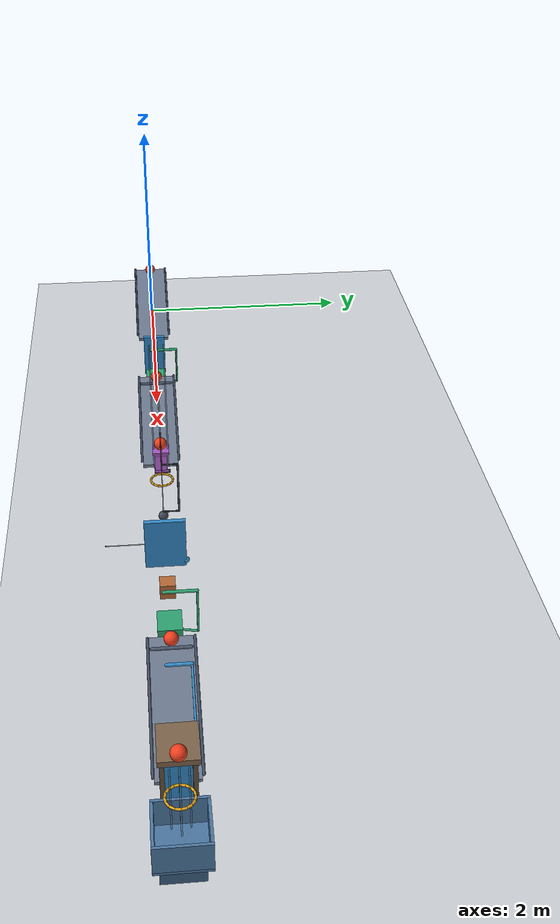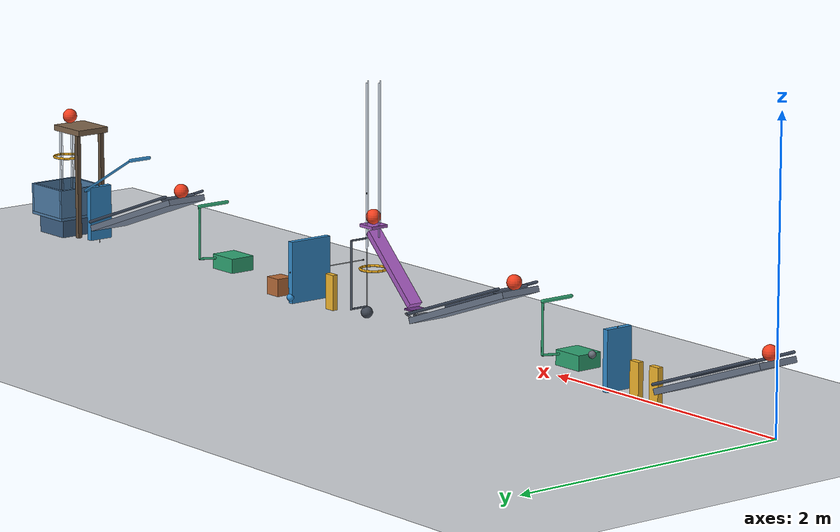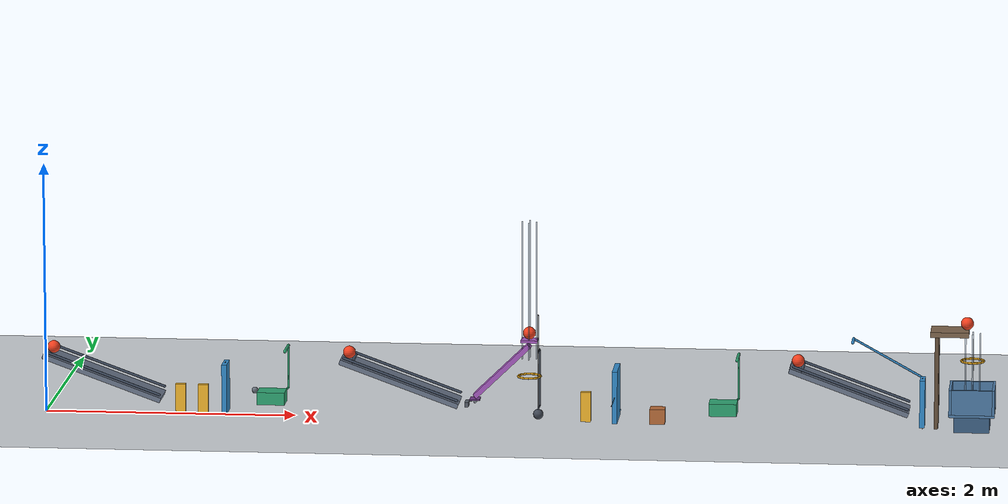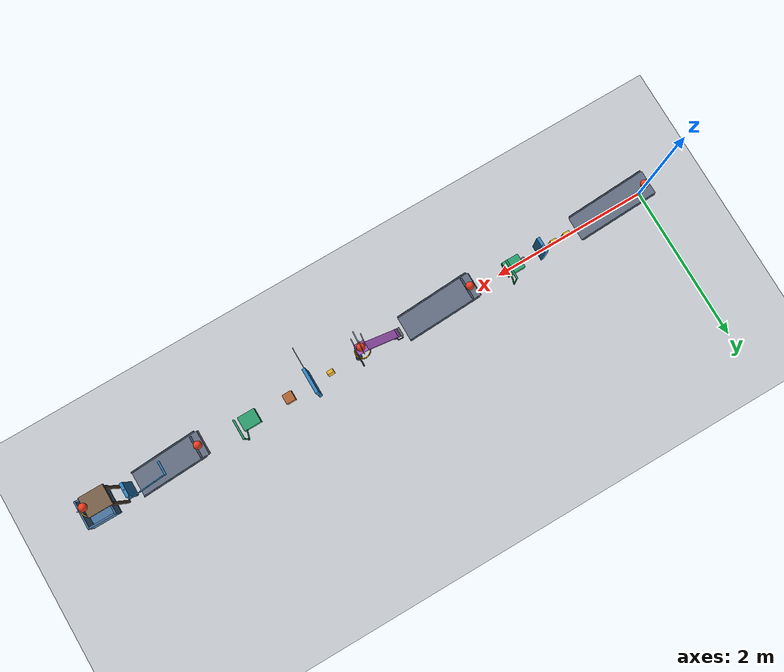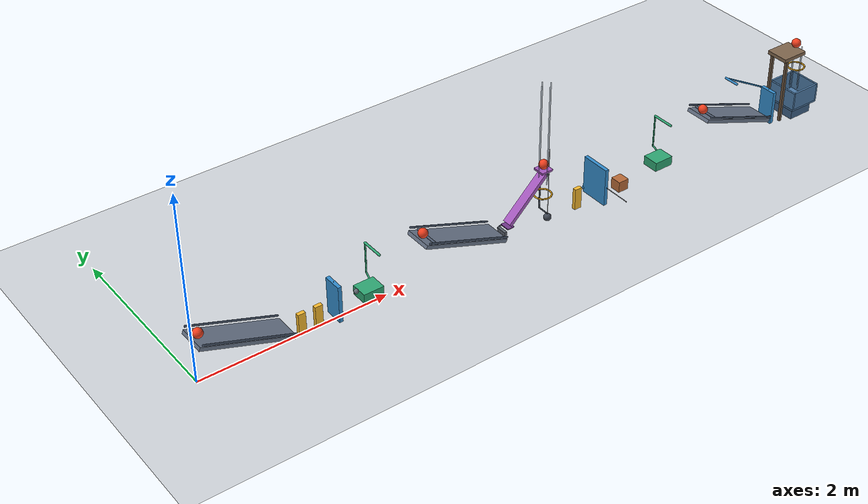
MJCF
<mujoco model="passive_chain_reaction_revised">
  <compiler angle="radian" autolimits="true"/>
  <option timestep="0.002" gravity="0 0 -9.81" integrator="implicitfast" solver="Newton" iterations="100" tolerance="1e-9" cone="elliptic"/>
  <size njmax="3000" nconmax="1000"/>

  <!-- Contact damping approximates restitution 0.05; sliding friction is 0.70. -->
  <default>
    <geom friction="0.70 0 0" condim="3" solref="0.010 0.690107" solimp="0.95 0.99 0.001 0.5 2"/>
    <joint armature="0" solreflimit="0.006 1" solimplimit="0.99 0.999 0.001 0.5 2"/>
  </default>

  <visual>
    <global azimuth="110" elevation="-20"/>
    <headlight ambient="0.35 0.35 0.35" diffuse="0.65 0.65 0.65" specular="0.15 0.15 0.15"/>
    <rgba haze="0.85 0.90 0.95 1"/>
  </visual>

  <worldbody>
    <light name="main_light" pos="3.5 -3 7" dir="0 0 -1" directional="true"/>
    <camera name="overview" pos="4 -8 5" xyaxes="1 0 0 0 0.447214 0.894427"/>
    <geom name="floor" type="plane" size="12 6 0.1" friction="0.70 0.005 0.002" condim="6" priority="1" rgba="0.82 0.84 0.86 1"/>

    <body name="ramp1" pos="0.463006 0 0.302216" euler="0 0.3490658504 0">
      <geom name="ramp1_surface" type="box" size="0.50 0.15 0.02" rgba="0.42 0.47 0.55 1"/>
      <geom name="ramp1_left_rail" type="capsule" fromto="-0.48 -0.158 0.045 0.48 -0.158 0.045" size="0.01" rgba="0.25 0.30 0.38 1"/>
      <geom name="ramp1_right_rail" type="capsule" fromto="-0.48 0.158 0.045 0.48 0.158 0.045" size="0.01" rgba="0.25 0.30 0.38 1"/>
    </body>

    <body name="ball1" pos="0.064086 0 0.521904">
      <freejoint name="ball1_free"/>
      <geom name="ball1_sphere" type="sphere" size="0.05" mass="0.20" rgba="0.95 0.25 0.12 1"/>
    </body>

    <body name="domino1" pos="1.0796926 0 0.12">
      <freejoint name="domino1_free"/>
      <geom name="domino1_box" type="box" size="0.04 0.02 0.12" mass="0.25" rgba="0.96 0.72 0.18 1"/>
    </body>

    <body name="domino2" pos="1.2596926 0 0.12">
      <freejoint name="domino2_free"/>
      <geom name="domino2_box" type="box" size="0.04 0.02 0.12" mass="0.25" rgba="0.96 0.72 0.18 1"/>
    </body>

    <body name="flap1" pos="1.4396926 0 0.02">
      <joint name="flap1_hinge" type="hinge" axis="0 1 0" damping="0.04" limited="true" range="0 1.1344640138"/>
      <geom name="flap1_panel" type="box" pos="0 0 0.20" size="0.02 0.10 0.20" mass="0.30" rgba="0.20 0.55 0.80 1"/>
      <site name="flap1_spring_tip" pos="0 0 0.40" size="0.005" rgba="0.25 0.25 0.25 1"/>
    </body>

    <body name="flap1_spring_mount" pos="1.4396926 0 -0.30">
      <site name="flap1_spring_anchor" pos="0 0 0" size="0.005" rgba="0.25 0.25 0.25 1"/>
    </body>

    <!-- The freely rotating rear roller prevents the inclined flap/cart contact from self-locking. -->
    <!-- Cart box plus roller mass is 0.50 kg. -->
    <body name="cart1" pos="1.81 0 0.15">
      <joint name="cart1_slide" type="slide" axis="1 0 0" damping="0.20" limited="true" range="0 0.45"/>
      <geom name="cart1_box" type="box" size="0.11 0.09 0.05" mass="0.49" rgba="0.18 0.65 0.45 1"/>
      <geom name="cart1_pushrod" type="capsule" fromto="0.11 0.20 0.03 0.11 0.20 0.374245" size="0.008" mass="0" rgba="0.18 0.65 0.45 1"/>
      <geom name="cart1_striker" type="capsule" fromto="0.11 -0.035 0.374245 0.11 0.20 0.374245" size="0.012" mass="0" rgba="0.18 0.65 0.45 1"/>
      <geom name="cart1_pushrod_brace" type="capsule" fromto="0.075 0.075 0.025 0.11 0.20 0.03" size="0.008" mass="0" rgba="0.18 0.65 0.45 1"/>
      <body name="cart1_contact_roller" pos="-0.135 0 0.05">
        <joint name="cart1_contact_roller_joint" type="ball" damping="0"/>
        <geom name="cart1_contact_roller_sphere" type="sphere" size="0.025" mass="0.01" rgba="0.40 0.43 0.47 1"/>
      </body>
    </body>

    <body name="ramp2" pos="2.837356 0 0.302216" euler="0 0.3490658504 0">
      <geom name="ramp2_surface" type="box" size="0.50 0.15 0.02" rgba="0.42 0.47 0.55 1"/>
      <geom name="ramp2_left_rail" type="capsule" fromto="-0.48 -0.158 0.045 0.48 -0.158 0.045" size="0.01" rgba="0.25 0.30 0.38 1"/>
      <geom name="ramp2_right_rail" type="capsule" fromto="-0.48 0.158 0.045 0.48 0.158 0.045" size="0.01" rgba="0.25 0.30 0.38 1"/>
      <geom name="ramp2_release_lip" type="capsule" fromto="-0.405 -0.13 0.036 -0.405 0.13 0.036" size="0.012" rgba="0.30 0.35 0.43 1"/>
    </body>

    <body name="ball2" pos="2.432 0 0.524245">
      <freejoint name="ball2_free"/>
      <geom name="ball2_sphere" type="sphere" size="0.05" mass="0.20" rgba="0.95 0.25 0.12 1"/>
    </body>

    <body name="lever1" pos="3.649844 0 0.398398" euler="0 -0.7679448709 0">
      <joint name="lever1_hinge" type="hinge" axis="0 -1 0" damping="0.04" stiffness="2.0" springref="1.20" limited="true" range="0 0.7853981634"/>
      <geom name="lever1_beam" type="box" size="0.30 0.05 0.02" mass="0.50" rgba="0.65 0.35 0.75 1"/>
      <geom name="lever1_ball_tray" type="box" pos="0.327786 0 0.028774" euler="0 0.7679448709 0" size="0.065 0.065 0.01" mass="0" rgba="0.65 0.35 0.75 1"/>
      <geom name="lever1_latch_pad" type="box" pos="-0.317366 0 -0.017984" euler="0 0.7679448709 0" size="0.04 0.055 0.005" mass="0" rgba="0.45 0.22 0.55 1"/>
    </body>

    <!-- Breakaway friction holds the latch until impact; its trigger and links remain below the lever pad. -->
    <body name="lever_latch" pos="3.434042 0 0.145">
      <joint name="lever_latch_slide" type="slide" axis="1 0 0" damping="0.20" frictionloss="0.30" limited="true" range="0 0.18"/>
      <geom name="lever_latch_trigger" type="box" pos="-0.065 0 -0.02" size="0.015 0.055 0.02" mass="0.025" rgba="0.35 0.38 0.42 1"/>
      <geom name="lever_latch_link" type="capsule" fromto="0 0.075 0 -0.065 0.075 -0.02" size="0.006" mass="0" rgba="0.35 0.38 0.42 1"/>
      <geom name="lever_latch_lower_crosspiece" type="capsule" fromto="0 0 0 0 0.075 0" size="0.006" mass="0" rgba="0.35 0.38 0.42 1"/>
      <geom name="lever_latch_upper_crosspiece" type="capsule" fromto="-0.065 0 -0.02 -0.065 0.075 -0.02" size="0.006" mass="0" rgba="0.35 0.38 0.42 1"/>
      <body name="lever_latch_roller" pos="0 0 0">
        <joint name="lever_latch_roller_joint" type="ball" damping="0"/>
        <geom name="lever_latch_roller_sphere" type="sphere" size="0.015" mass="0.005" rgba="0.60 0.63 0.68 1"/>
      </body>
    </body>

    <body name="ball3" pos="3.865646 0 0.706796">
      <freejoint name="ball3_free"/>
      <geom name="ball3_sphere" type="sphere" size="0.05" mass="0.20" contype="2" conaffinity="3" rgba="0.95 0.25 0.12 1"/>
    </body>

    <body name="launch_guide" pos="3.865646 0 0">
      <geom name="launch_guide_left" type="capsule" fromto="-0.057 0 0.50 -0.057 0 1.60" size="0.005" contype="2" conaffinity="2" rgba="0.55 0.65 0.75 0.35"/>
      <geom name="launch_guide_right" type="capsule" fromto="0.057 0 0.50 0.057 0 1.60" size="0.005" contype="2" conaffinity="2" rgba="0.55 0.65 0.75 0.35"/>
      <geom name="launch_guide_front" type="capsule" fromto="0 -0.057 0.50 0 -0.057 1.60" size="0.005" contype="2" conaffinity="2" rgba="0.55 0.65 0.75 0.35"/>
      <geom name="launch_guide_back" type="capsule" fromto="0 0.057 0.50 0 0.057 1.60" size="0.005" contype="2" conaffinity="2" rgba="0.55 0.65 0.75 0.35"/>
    </body>

    <body name="ring1" pos="3.865646 0 0.356796">
      <geom name="ring1_segment01" type="capsule" fromto="0.089724 0 0 0.082894 0.034336 0" size="0.008" rgba="0.90 0.65 0.10 1"/>
      <geom name="ring1_segment02" type="capsule" fromto="0.082894 0.034336 0 0.063444 0.063444 0" size="0.008" rgba="0.90 0.65 0.10 1"/>
      <geom name="ring1_segment03" type="capsule" fromto="0.063444 0.063444 0 0.034336 0.082894 0" size="0.008" rgba="0.90 0.65 0.10 1"/>
      <geom name="ring1_segment04" type="capsule" fromto="0.034336 0.082894 0 0 0.089724 0" size="0.008" rgba="0.90 0.65 0.10 1"/>
      <geom name="ring1_segment05" type="capsule" fromto="0 0.089724 0 -0.034336 0.082894 0" size="0.008" rgba="0.90 0.65 0.10 1"/>
      <geom name="ring1_segment06" type="capsule" fromto="-0.034336 0.082894 0 -0.063444 0.063444 0" size="0.008" rgba="0.90 0.65 0.10 1"/>
      <geom name="ring1_segment07" type="capsule" fromto="-0.063444 0.063444 0 -0.082894 0.034336 0" size="0.008" rgba="0.90 0.65 0.10 1"/>
      <geom name="ring1_segment08" type="capsule" fromto="-0.082894 0.034336 0 -0.089724 0 0" size="0.008" rgba="0.90 0.65 0.10 1"/>
      <geom name="ring1_segment09" type="capsule" fromto="-0.089724 0 0 -0.082894 -0.034336 0" size="0.008" rgba="0.90 0.65 0.10 1"/>
      <geom name="ring1_segment10" type="capsule" fromto="-0.082894 -0.034336 0 -0.063444 -0.063444 0" size="0.008" rgba="0.90 0.65 0.10 1"/>
      <geom name="ring1_segment11" type="capsule" fromto="-0.063444 -0.063444 0 -0.034336 -0.082894 0" size="0.008" rgba="0.90 0.65 0.10 1"/>
      <geom name="ring1_segment12" type="capsule" fromto="-0.034336 -0.082894 0 0 -0.089724 0" size="0.008" rgba="0.90 0.65 0.10 1"/>
      <geom name="ring1_segment13" type="capsule" fromto="0 -0.089724 0 0.034336 -0.082894 0" size="0.008" rgba="0.90 0.65 0.10 1"/>
      <geom name="ring1_segment14" type="capsule" fromto="0.034336 -0.082894 0 0.063444 -0.063444 0" size="0.008" rgba="0.90 0.65 0.10 1"/>
      <geom name="ring1_segment15" type="capsule" fromto="0.063444 -0.063444 0 0.082894 -0.034336 0" size="0.008" rgba="0.90 0.65 0.10 1"/>
      <geom name="ring1_segment16" type="capsule" fromto="0.082894 -0.034336 0 0.089724 0 0" size="0.008" rgba="0.90 0.65 0.10 1"/>
    </body>

    <body name="pendulum1" pos="3.935646 0 0.550227">
      <joint name="pendulum1_hinge" type="hinge" axis="0 -1 0" damping="0.04" limited="true" range="0 0.6981317008"/>
      <geom name="pendulum1_rod" type="capsule" fromto="0 0.13 -0.01 0 0.13 -0.46" size="0.008" mass="0.05" rgba="0.32 0.36 0.42 1"/>
      <geom name="pendulum1_upper_yoke" type="capsule" fromto="0 0 0 0 0.13 0" size="0.006" mass="0" rgba="0.32 0.36 0.42 1"/>
      <geom name="pendulum1_lower_yoke" type="capsule" fromto="0 0.13 -0.46 0 0 -0.46" size="0.006" mass="0" rgba="0.32 0.36 0.42 1"/>
      <geom name="pendulum1_bob" type="sphere" pos="0 0 -0.50" size="0.04" mass="0.30" rgba="0.25 0.28 0.33 1"/>
      <site name="pendulum1_spring_bob" pos="0 0 -0.50" size="0.005" rgba="0.25 0.25 0.25 1"/>
    </body>

    <body name="pendulum_spring_mount" pos="3.935646 0 0.850227">
      <site name="pendulum_spring_anchor" pos="0 0 0" size="0.005" rgba="0.25 0.25 0.25 1"/>
    </body>

    <body name="domino3" pos="4.314244 0 0.12">
      <freejoint name="domino3_free"/>
      <geom name="domino3_box" type="box" size="0.04 0.02 0.12" mass="0.25" rgba="0.96 0.72 0.18 1"/>
    </body>

    <!-- The door now swings clockwise about a vertical side hinge, avoiding a downward wedging force on block1. -->
    <body name="door1" pos="4.554244 -0.16 0.02">
      <joint name="door1_hinge" type="hinge" axis="0 0 -1" damping="0.04" limited="true" range="0 1.2217304764"/>
      <geom name="door1_panel" type="box" pos="0 0.16 0.21" size="0.02 0.16 0.21" mass="0.45" rgba="0.20 0.55 0.80 1"/>
      <geom name="door1_block_striker" type="sphere" pos="0 0.32 0.04" size="0.025" mass="0" rgba="0.20 0.55 0.80 1"/>
      <site name="door1_spring_tip" pos="0 0.32 0.21" size="0.005" rgba="0.25 0.25 0.25 1"/>
    </body>

    <body name="door_spring_mount" pos="4.554244 -0.46 0.23">
      <site name="door_spring_anchor" pos="0 0 0" size="0.005" rgba="0.25 0.25 0.25 1"/>
    </body>

    <body name="block1" pos="4.884244 0 0.06">
      <freejoint name="block1_free"/>
      <geom name="block1_cube" type="box" size="0.06 0.06 0.06" mass="0.35" rgba="0.72 0.42 0.22 1"/>
    </body>

    <body name="cart2" pos="5.404244 0 0.13">
      <joint name="cart2_slide" type="slide" axis="1 0 0" damping="0.20" limited="true" range="0 0.42"/>
      <geom name="cart2_box" type="box" size="0.11 0.09 0.05" mass="0.50" rgba="0.18 0.65 0.45 1"/>
      <geom name="cart2_pushrod" type="capsule" fromto="0.11 0.20 0.03 0.11 0.20 0.394245" size="0.008" mass="0" rgba="0.18 0.65 0.45 1"/>
      <geom name="cart2_striker" type="capsule" fromto="0.11 -0.035 0.394245 0.11 0.20 0.394245" size="0.012" mass="0" rgba="0.18 0.65 0.45 1"/>
      <geom name="cart2_pushrod_brace" type="capsule" fromto="0.075 0.075 0.025 0.11 0.20 0.03" size="0.008" mass="0" rgba="0.18 0.65 0.45 1"/>
    </body>

    <body name="ramp3" pos="6.401600 0 0.302216" euler="0 0.3490658504 0">
      <geom name="ramp3_surface" type="box" size="0.50 0.15 0.02" rgba="0.42 0.47 0.55 1"/>
      <geom name="ramp3_left_rail" type="capsule" fromto="-0.48 -0.158 0.045 0.48 -0.158 0.045" size="0.01" rgba="0.25 0.30 0.38 1"/>
      <geom name="ramp3_right_rail" type="capsule" fromto="-0.48 0.158 0.045 0.48 0.158 0.045" size="0.01" rgba="0.25 0.30 0.38 1"/>
      <geom name="ramp3_release_lip" type="capsule" fromto="-0.405 -0.13 0.036 -0.405 0.13 0.036" size="0.012" rgba="0.30 0.35 0.43 1"/>
    </body>

    <body name="ball4" pos="5.996244 0 0.524245">
      <freejoint name="ball4_free"/>
      <geom name="ball4_sphere" type="sphere" size="0.05" mass="0.20" rgba="0.95 0.25 0.12 1"/>
    </body>

    <body name="flap2" pos="6.978287 0 0.02">
      <joint name="flap2_hinge" type="hinge" axis="0 1 0" damping="0.04" limited="true" range="0 1.0471975512"/>
      <geom name="flap2_panel" type="box" pos="0 0 0.19" size="0.02 0.09 0.19" mass="0.28" rgba="0.20 0.55 0.80 1"/>
      <geom name="flap2_arm_crosspiece" type="capsule" fromto="0 0 0.36 0 0.12 0.36" size="0.008" mass="0" rgba="0.20 0.55 0.80 1"/>
      <geom name="flap2_shelf_arm" type="capsule" fromto="0 0.12 0.36 -0.551480 0.12 0.664808" size="0.008" mass="0" rgba="0.20 0.55 0.80 1"/>
      <geom name="flap2_ball_striker" type="capsule" fromto="-0.551480 -0.04 0.664808 -0.551480 0.12 0.664808" size="0.012" mass="0" rgba="0.20 0.55 0.80 1"/>
      <site name="flap2_spring_tip" pos="0 0 0.38" size="0.005" rgba="0.25 0.25 0.25 1"/>
    </body>

    <body name="flap2_spring_mount" pos="6.978287 0 -0.30">
      <site name="flap2_spring_anchor" pos="0 0 0" size="0.005" rgba="0.25 0.25 0.25 1"/>
    </body>

    <body name="shelf1" pos="7.19 0 0.78">
      <geom name="shelf1_surface" type="box" size="0.15 0.125 0.02" rgba="0.50 0.40 0.30 1"/>
      <geom name="shelf1_leg_left" type="box" pos="-0.10 -0.10 -0.38" size="0.015 0.015 0.38" rgba="0.40 0.32 0.24 1"/>
      <geom name="shelf1_leg_right" type="box" pos="-0.10 0.10 -0.38" size="0.015 0.015 0.38" rgba="0.40 0.32 0.24 1"/>
    </body>

    <body name="ball5" pos="7.325 0 0.85">
      <freejoint name="ball5_free"/>
      <geom name="ball5_sphere" type="sphere" size="0.05" mass="0.20" contype="4" conaffinity="5" rgba="0.95 0.25 0.12 1"/>
    </body>

    <body name="final_drop_guide" pos="7.37 0 0">
      <geom name="final_drop_guide_left" type="capsule" fromto="-0.057 0 0.30 -0.057 0 0.77" size="0.005" contype="4" conaffinity="4" rgba="0.55 0.65 0.75 0.35"/>
      <geom name="final_drop_guide_right" type="capsule" fromto="0.057 0 0.30 0.057 0 0.77" size="0.005" contype="4" conaffinity="4" rgba="0.55 0.65 0.75 0.35"/>
      <geom name="final_drop_guide_front" type="capsule" fromto="0 -0.057 0.30 0 -0.057 0.77" size="0.005" contype="4" conaffinity="4" rgba="0.55 0.65 0.75 0.35"/>
      <geom name="final_drop_guide_back" type="capsule" fromto="0 0.057 0.30 0 0.057 0.77" size="0.005" contype="4" conaffinity="4" rgba="0.55 0.65 0.75 0.35"/>
    </body>

    <body name="ring2" pos="7.37 0 0.55">
      <geom name="ring2_segment01" type="capsule" fromto="0.089724 0 0 0.082894 0.034336 0" size="0.008" rgba="0.90 0.65 0.10 1"/>
      <geom name="ring2_segment02" type="capsule" fromto="0.082894 0.034336 0 0.063444 0.063444 0" size="0.008" rgba="0.90 0.65 0.10 1"/>
      <geom name="ring2_segment03" type="capsule" fromto="0.063444 0.063444 0 0.034336 0.082894 0" size="0.008" rgba="0.90 0.65 0.10 1"/>
      <geom name="ring2_segment04" type="capsule" fromto="0.034336 0.082894 0 0 0.089724 0" size="0.008" rgba="0.90 0.65 0.10 1"/>
      <geom name="ring2_segment05" type="capsule" fromto="0 0.089724 0 -0.034336 0.082894 0" size="0.008" rgba="0.90 0.65 0.10 1"/>
      <geom name="ring2_segment06" type="capsule" fromto="-0.034336 0.082894 0 -0.063444 0.063444 0" size="0.008" rgba="0.90 0.65 0.10 1"/>
      <geom name="ring2_segment07" type="capsule" fromto="-0.063444 0.063444 0 -0.082894 0.034336 0" size="0.008" rgba="0.90 0.65 0.10 1"/>
      <geom name="ring2_segment08" type="capsule" fromto="-0.082894 0.034336 0 -0.089724 0 0" size="0.008" rgba="0.90 0.65 0.10 1"/>
      <geom name="ring2_segment09" type="capsule" fromto="-0.089724 0 0 -0.082894 -0.034336 0" size="0.008" rgba="0.90 0.65 0.10 1"/>
      <geom name="ring2_segment10" type="capsule" fromto="-0.082894 -0.034336 0 -0.063444 -0.063444 0" size="0.008" rgba="0.90 0.65 0.10 1"/>
      <geom name="ring2_segment11" type="capsule" fromto="-0.063444 -0.063444 0 -0.034336 -0.082894 0" size="0.008" rgba="0.90 0.65 0.10 1"/>
      <geom name="ring2_segment12" type="capsule" fromto="-0.034336 -0.082894 0 0 -0.089724 0" size="0.008" rgba="0.90 0.65 0.10 1"/>
      <geom name="ring2_segment13" type="capsule" fromto="0 -0.089724 0 0.034336 -0.082894 0" size="0.008" rgba="0.90 0.65 0.10 1"/>
      <geom name="ring2_segment14" type="capsule" fromto="0.034336 -0.082894 0 0.063444 -0.063444 0" size="0.008" rgba="0.90 0.65 0.10 1"/>
      <geom name="ring2_segment15" type="capsule" fromto="0.063444 -0.063444 0 0.082894 -0.034336 0" size="0.008" rgba="0.90 0.65 0.10 1"/>
      <geom name="ring2_segment16" type="capsule" fromto="0.082894 -0.034336 0 0.089724 0 0" size="0.008" rgba="0.90 0.65 0.10 1"/>
    </body>

    <body name="bin1" pos="7.37 0 0">
      <geom name="bin1_base" type="box" pos="0 0 0.14" size="0.18 0.18 0.01" friction="0.70 0.005 0.002" condim="6" priority="1" rgba="0.30 0.48 0.65 1"/>
      <geom name="bin1_wall_left" type="box" pos="-0.17 0 0.25" size="0.01 0.18 0.10" rgba="0.30 0.48 0.65 1"/>
      <geom name="bin1_wall_right" type="box" pos="0.17 0 0.25" size="0.01 0.18 0.10" rgba="0.30 0.48 0.65 1"/>
      <geom name="bin1_wall_front" type="box" pos="0 -0.17 0.25" size="0.16 0.01 0.10" rgba="0.30 0.48 0.65 1"/>
      <geom name="bin1_wall_back" type="box" pos="0 0.17 0.25" size="0.16 0.01 0.10" rgba="0.30 0.48 0.65 1"/>
      <geom name="bin1_support" type="box" pos="0 0 0.065" size="0.14 0.14 0.065" rgba="0.24 0.38 0.52 1"/>
    </body>
  </worldbody>

  <!-- Each assist spring has zero joint moment in its exact initial configuration. -->
  <tendon>
    <spatial name="flap1_assist_spring" stiffness="8" damping="0" springlength="0.42" width="0.003" rgba="0.30 0.30 0.30 0.5">
      <site site="flap1_spring_anchor"/>
      <site site="flap1_spring_tip"/>
    </spatial>
    <spatial name="pendulum1_assist_spring" stiffness="40" damping="0" springlength="0.40" width="0.003" rgba="0.30 0.30 0.30 0.5">
      <site site="pendulum_spring_anchor"/>
      <site site="pendulum1_spring_bob"/>
    </spatial>
    <spatial name="door1_assist_spring" stiffness="200" damping="0" springlength="0.30" width="0.003" rgba="0.30 0.30 0.30 0.5">
      <site site="door_spring_anchor"/>
      <site site="door1_spring_tip"/>
    </spatial>
    <spatial name="flap2_assist_spring" stiffness="8" damping="0" springlength="0.40" width="0.003" rgba="0.30 0.30 0.30 0.5">
      <site site="flap2_spring_anchor"/>
      <site site="flap2_spring_tip"/>
    </spatial>
  </tendon>

  <!-- Default keyframe positions are qpos0; all initial velocities are zero. -->
  <keyframe>
    <key name="start" time="0"/>
  </keyframe>
</mujoco>
